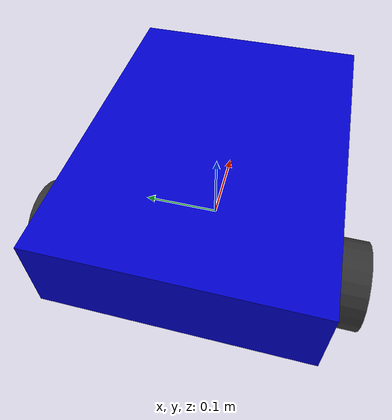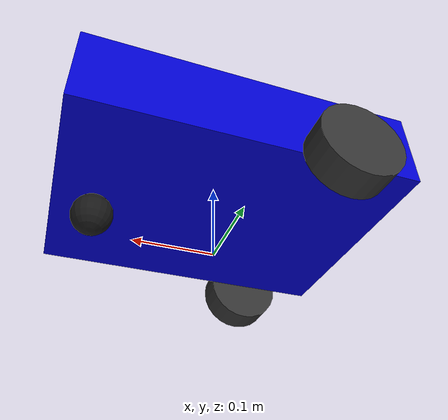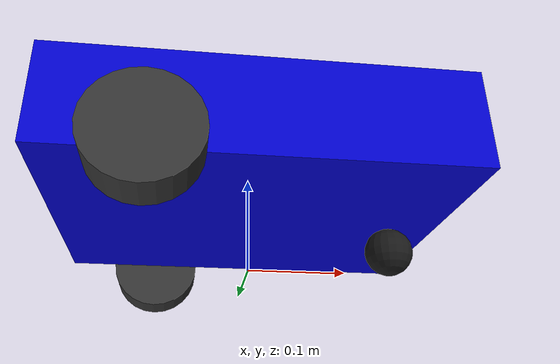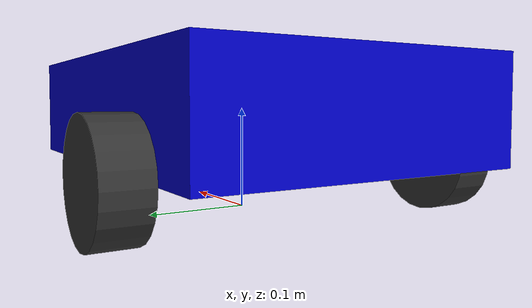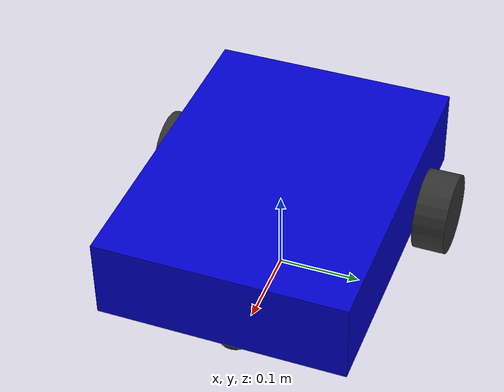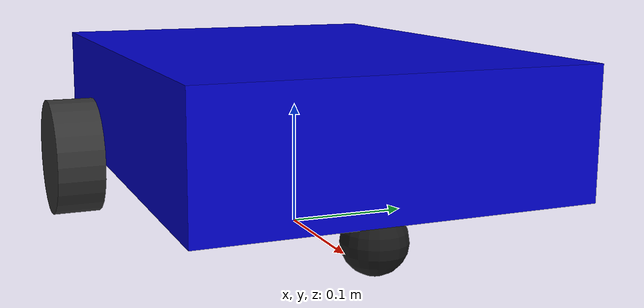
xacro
<?xml version="1.0"?>
<robot name="amr_robot" xmlns:xacro="http://www.ros.org/wiki/xacro">

  <!-- Step 1: Shared constants (PI) and RViz materials -->
  <xacro:include filename="$(find robot_description)/urdf/common_properties.xacro"/>

  <!-- Step 2: Inertia calculation macros -->
  <xacro:include filename="$(find robot_description)/urdf/inertia_macros.xacro"/>

  <!-- Step 3: Base chassis (base_footprint + base_link) -->
  <xacro:include filename="$(find robot_description)/urdf/base.xacro"/>

  <!-- Step 4: Wheels (left, right drive wheels + caster) -->
  <xacro:include filename="$(find robot_description)/urdf/wheels.xacro"/>

  <!-- Step 5: Gazebo plugins, colours, friction -->
  <xacro:include filename="$(find robot_description)/urdf/gazebo.xacro"/>

</robot>

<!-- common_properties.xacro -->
<robot xmlns:xacro="http://www.ros.org/wiki/xacro">

  <!--
    This file contains:
    1. Mathematical constants
    2. Material colour definitions for RViz
    These are shared by all other xacro files via xacro:include
  -->

  <!-- ═══════════════════════════════════════════
       MATHEMATICAL CONSTANTS
       ═══════════════════════════════════════════ -->

  <xacro:property name="PI" value="3.14159265358979"/>

  <!-- ═══════════════════════════════════════════
       MATERIAL DEFINITIONS FOR RVIZ
       ═══════════════════════════════════════════ -->

  <material name="white">
    <color rgba="1.0 1.0 1.0 1.0"/>
  </material>

  <material name="grey">
    <color rgba="0.5 0.5 0.5 1.0"/>
  </material>

  <material name="dark_grey">
    <color rgba="0.2 0.2 0.2 1.0"/>
  </material>

  <material name="black">
    <color rgba="0.1 0.1 0.1 1.0"/>
  </material>

  <material name="blue">
    <color rgba="0.0 0.0 0.8 1.0"/>
  </material>

  <material name="red">
    <color rgba="0.8 0.0 0.0 1.0"/>
  </material>

  <material name="green">
    <color rgba="0.0 0.8 0.0 1.0"/>
  </material>

  <material name="orange">
    <color rgba="1.0 0.5 0.0 1.0"/>
  </material>

</robot>

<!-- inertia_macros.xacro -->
<robot xmlns:xacro="http://www.ros.org/wiki/xacro">

  <xacro:macro name="box_inertia" params="m x y z">
    <inertial>
      <origin xyz="0 0 0" rpy="0 0 0"/>
      <mass value="${m}"/>
      <inertia
        ixx="${m/12.0*(y*y+z*z)}" ixy="0.0" ixz="0.0"
        iyy="${m/12.0*(x*x+z*z)}" iyz="0.0"
        izz="${m/12.0*(x*x+y*y)}"/>
    </inertial>
  </xacro:macro>

  <xacro:macro name="cylinder_inertia" params="m r l">
    <inertial>
      <origin xyz="0 0 0" rpy="0 0 0"/>
      <mass value="${m}"/>
      <inertia
        ixx="${m/12.0*(3*r*r+l*l)}" ixy="0.0" ixz="0.0"
        iyy="${m/12.0*(3*r*r+l*l)}" iyz="0.0"
        izz="${m/2.0*r*r}"/>
    </inertial>
  </xacro:macro>

  <xacro:macro name="sphere_inertia" params="m r">
    <inertial>
      <origin xyz="0 0 0" rpy="0 0 0"/>
      <mass value="${m}"/>
      <inertia
        ixx="${2.0/5.0*m*r*r}" ixy="0.0" ixz="0.0"
        iyy="${2.0/5.0*m*r*r}" iyz="0.0"
        izz="${2.0/5.0*m*r*r}"/>
    </inertial>
  </xacro:macro>

</robot>

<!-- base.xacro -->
<robot xmlns:xacro="http://www.ros.org/wiki/xacro">

  <!-- Include shared constants and inertia macros -->
  <!--
    xacro:include pulls another xacro file into this one.
    After this line, ${PI} and all inertia macros are available here.
    The filename is relative to this file's location.
  -->

  <!-- ═══════════════════════════════════════════
       ROBOT DIMENSIONS — change these properties
       to resize the entire robot automatically
       ═══════════════════════════════════════════ -->

  <!--
    All dimensions in metres. All masses in kilograms.
    Changing any value here updates the geometry, inertia,
    and joint positions automatically via ${} expressions.
  -->
  <xacro:property name="base_length"    value="0.40"/>  <!-- chassis x dimension -->
  <xacro:property name="base_width"     value="0.30"/>  <!-- chassis y dimension -->
  <xacro:property name="base_height"    value="0.10"/>  <!-- chassis z dimension -->
  <xacro:property name="base_mass"      value="4.0"/>   <!-- chassis mass in kg  -->

  <!-- ═══════════════════════════════════════════
       BASE FOOTPRINT LINK
       ═══════════════════════════════════════════ -->

  <link name="base_footprint"/>

  <!-- ═══════════════════════════════════════════
       BASE FOOTPRINT → BASE LINK JOINT
       ═══════════════════════════════════════════ -->

  <xacro:property name="ground_clearance"   value="0.05"/>   <!-- metres -->
  <joint name="base_footprint_joint" type="fixed">
    <parent link="base_footprint"/>
    <child  link="base_link"/>
    <origin xyz="0 0 ${base_height/2 + ground_clearance}" rpy="0 0 0"/>
  </joint>

  <!-- ═══════════════════════════════════════════
       BASE LINK — THE PHYSICAL CHASSIS
       ═══════════════════════════════════════════ -->

  <!--
    base_link is the physical body of the robot.
    Its origin sits at the geometric centre of the chassis box.
    All wheel joints are measured from this origin.
  -->
  <link name="base_link">

    <visual>
      <geometry>
        <box size="${base_length} ${base_width} ${base_height}"/>
      </geometry>
      <origin xyz="0 0 0" rpy="0 0 0"/>
      <material name="blue"/>
    </visual>

    <collision>
      <geometry>
        <box size="${base_length} ${base_width} ${base_height}"/>
      </geometry>
      <origin xyz="0 0 0" rpy="0 0 0"/>
    </collision>

    <xacro:box_inertia
      m="${base_mass}"
      x="${base_length}"
      y="${base_width}"
      z="${base_height}"/>

  </link>

</robot>

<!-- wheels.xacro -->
<robot xmlns:xacro="http://www.ros.org/wiki/xacro">

  <!-- Include shared files -->

  <!-- ═══════════════════════════════════════════
       WHEEL DIMENSIONS AND PLACEMENT
       ═══════════════════════════════════════════ -->

  <!--
    These properties define every physical aspect of the wheels.
    They are used inside the macro below via ${} expressions.
  -->

  <xacro:property name="wheel_radius"       value="0.05"/>   <!-- metres -->
  <xacro:property name="wheel_length"       value="0.04"/>   <!-- thickness of wheel -->
  <xacro:property name="wheel_mass"         value="0.3"/>    <!-- kg per wheel -->

  <xacro:property name="wheel_y_offset"     value="0.17"/>   <!-- half of separation -->

  <xacro:property name="wheel_z_offset"     value="-0.05"/>

  <xacro:property name="wheel_x_offset"     value="-0.10"/>

  <!-- Caster wheel dimensions -->
  <xacro:property name="caster_radius"      value="0.025"/>  <!-- metres -->
  <xacro:property name="caster_mass"        value="0.1"/>    <!-- kg -->

  <xacro:property name="caster_x_offset"    value="0.15"/>

  <xacro:property name="caster_z_offset"    value="-0.075"/>

  <!-- ═══════════════════════════════════════════
       DRIVE WHEEL MACRO
       ═══════════════════════════════════════════ -->

  <xacro:macro name="drive_wheel" params="prefix y_reflect">

    <link name="${prefix}_wheel">

      <visual>
        <geometry>
          <cylinder radius="${wheel_radius}" length="${wheel_length}"/>
        </geometry>
        <origin xyz="0 0 0" rpy="${PI/2} 0 0"/>
        <material name="dark_grey"/>
      </visual>

      <collision>
        <geometry>
          <cylinder radius="${wheel_radius}" length="${wheel_length}"/>
        </geometry>
        <origin xyz="0 0 0" rpy="${PI/2} 0 0"/>
      </collision>

      <!--
        cylinder_inertia macro from inertia_macros.xacro.
        m = wheel_mass, r = wheel_radius, l = wheel_length
        The macro computes ixx, iyy, izz automatically.
      -->
      <xacro:cylinder_inertia
        m="${wheel_mass}"
        r="${wheel_radius}"
        l="${wheel_length}"/>

    </link>

    <joint name="${prefix}_wheel_joint" type="continuous">
      <parent link="base_link"/>
      <child  link="${prefix}_wheel"/>
      <origin xyz="${wheel_x_offset} ${y_reflect * wheel_y_offset} ${wheel_z_offset}"
              rpy="0 0 0"/>
      <axis xyz="0 1 0"/>
      <dynamics damping="0.005" friction="0.05"/>
    </joint>

  </xacro:macro>

  <!-- ═══════════════════════════════════════════
       INSTANTIATE DRIVE WHEELS
       Call the macro twice — one line each.
       ═══════════════════════════════════════════ -->

  <!--
    left wheel:  prefix="left"  y_reflect= 1 → joint at y=+0.17
    right wheel: prefix="right" y_reflect=-1 → joint at y=-0.17
  -->
  <xacro:drive_wheel prefix="left"  y_reflect="1"/>
  <xacro:drive_wheel prefix="right" y_reflect="-1"/>

  <!-- ═══════════════════════════════════════════
       CASTER WHEEL
       ═══════════════════════════════════════════ -->

  <link name="caster_wheel">

    <visual>
      <geometry>
        <sphere radius="${caster_radius}"/>
      </geometry>
      <origin xyz="0 0 0" rpy="0 0 0"/>
      <material name="black"/>
    </visual>

    <collision>
      <geometry>
        <sphere radius="${caster_radius}"/>
      </geometry>
      <origin xyz="0 0 0" rpy="0 0 0"/>
    </collision>

    <!--
      sphere_inertia macro from inertia_macros.xacro.
      Small mass — caster is just a support ball, not a structural part.
    -->
    <xacro:sphere_inertia
      m="${caster_mass}"
      r="${caster_radius}"/>

  </link>

  <joint name="caster_wheel_joint" type="fixed">
    <parent link="base_link"/>
    <child  link="caster_wheel"/>
    <origin xyz="${caster_x_offset} 0 ${caster_z_offset}" rpy="0 0 0"/>
  </joint>

</robot>
